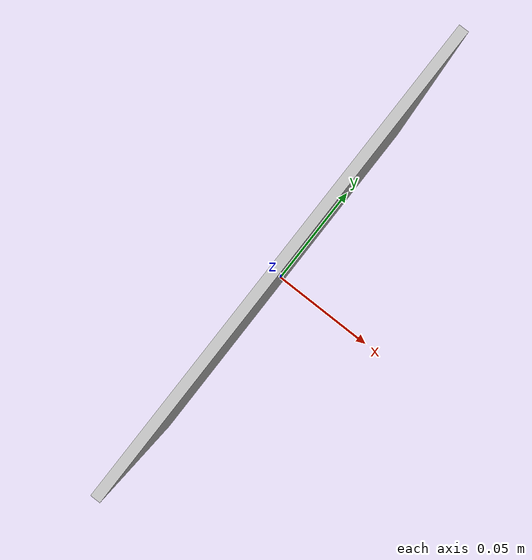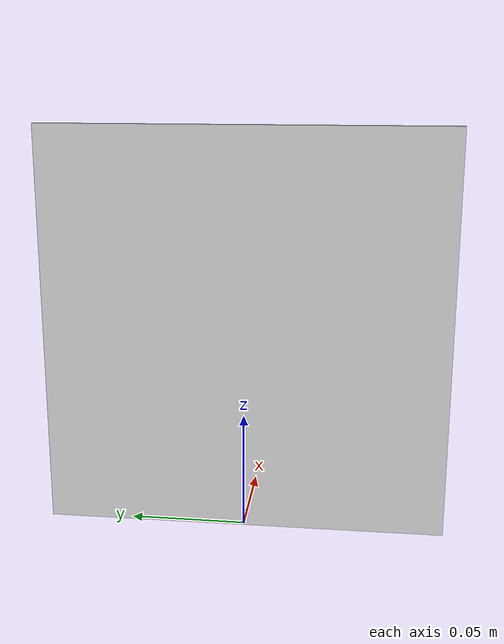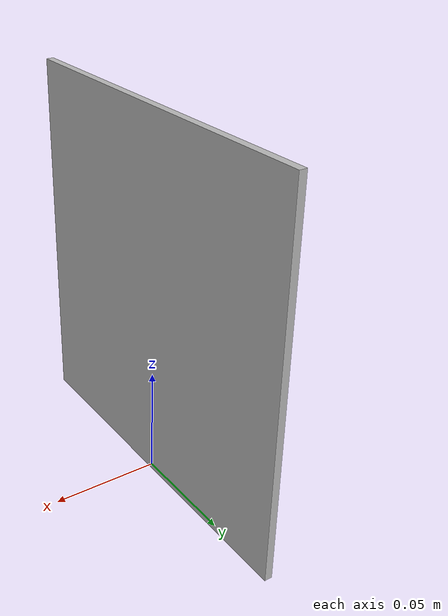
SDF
<?xml version="1.0" ?><sdf version="1.5">
  <model name="Marker10">
    <static>true</static>
    <link name="link">
      <visual name="visual">
        <geometry>
          <mesh>
            <uri>model://marker10/meshes/Marker10.dae</uri>
          <scale>0.346 0.346 0.346</scale></mesh>
        </geometry>
      </visual>
    </link>
  </model>
</sdf>
